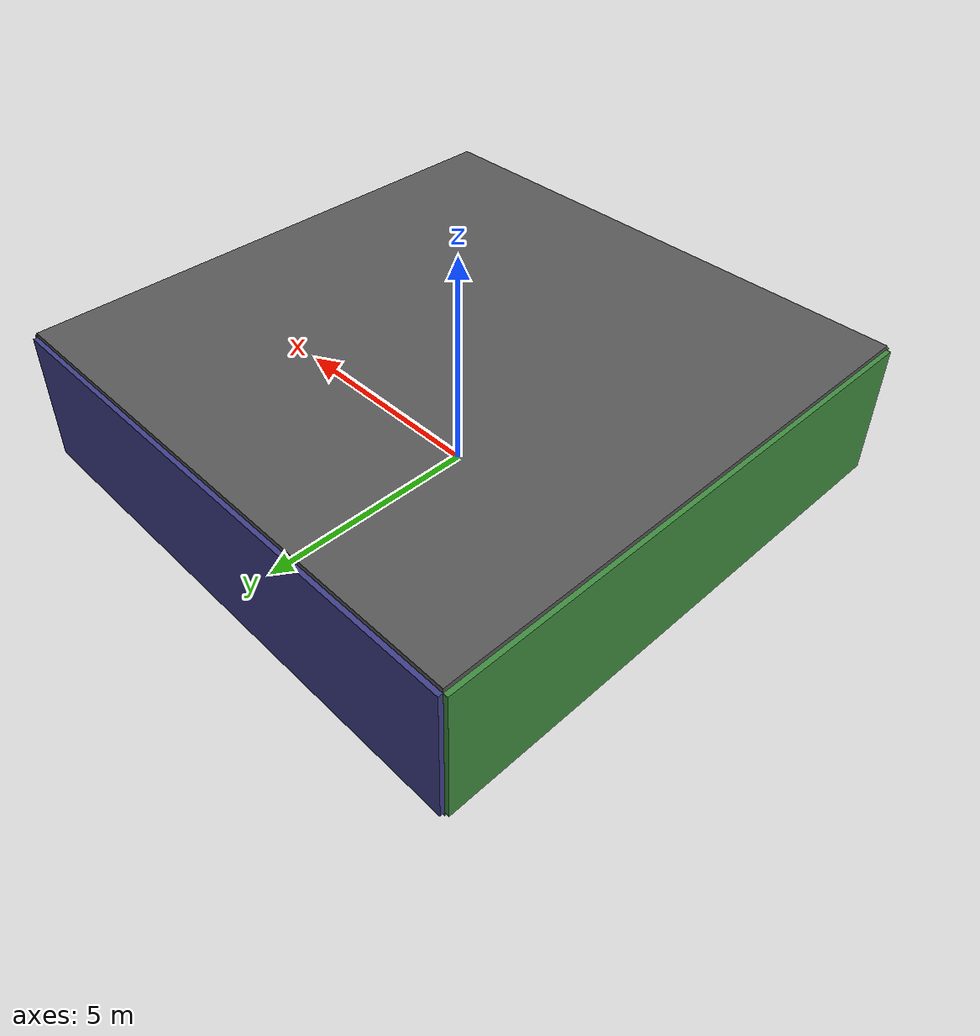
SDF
<?xml version="1.0" ?>
<sdf version="1.10">
  <world name="greenhouse_sensor_static">
    <physics name="greenhouse_1ms" type="ignored">
      <max_step_size>0.001</max_step_size>
      <real_time_factor>1.0</real_time_factor>
    </physics>

    <plugin
      filename="gz-sim-physics-system"
      name="gz::sim::systems::Physics"/>
    <plugin
      filename="gz-sim-user-commands-system"
      name="gz::sim::systems::UserCommands"/>
    <plugin
      filename="gz-sim-scene-broadcaster-system"
      name="gz::sim::systems::SceneBroadcaster"/>
    <plugin
      filename="gz-sim-sensors-system"
      name="gz::sim::systems::Sensors">
      <render_engine>ogre2</render_engine>
    </plugin>
    <plugin
      filename="gz-sim-imu-system"
      name="gz::sim::systems::Imu"/>

    <model name="sensor_room">
      <static>true</static>
      <link name="room">
        <visual name="floor">
          <pose>0 0 -0.05 0 0 0</pose>
          <geometry><box><size>12 12 0.1</size></box></geometry>
          <material>
            <ambient>0.45 0.45 0.45 1</ambient>
            <diffuse>0.45 0.45 0.45 1</diffuse>
          </material>
        </visual>
        <visual name="ceiling">
          <pose>0 0 3.05 0 0 0</pose>
          <geometry><box><size>12 12 0.1</size></box></geometry>
          <material>
            <ambient>0.35 0.35 0.35 1</ambient>
            <diffuse>0.35 0.35 0.35 1</diffuse>
          </material>
        </visual>
        <visual name="wall_positive_x">
          <pose>6.05 0 1.5 0 0 0</pose>
          <geometry><box><size>0.1 12 3.0</size></box></geometry>
          <material>
            <ambient>0.55 0.25 0.25 1</ambient>
            <diffuse>0.55 0.25 0.25 1</diffuse>
          </material>
        </visual>
        <visual name="wall_negative_x">
          <pose>-6.05 0 1.5 0 0 0</pose>
          <geometry><box><size>0.1 12 3.0</size></box></geometry>
          <material>
            <ambient>0.25 0.55 0.25 1</ambient>
            <diffuse>0.25 0.55 0.25 1</diffuse>
          </material>
        </visual>
        <visual name="wall_positive_y">
          <pose>0 6.05 1.5 0 0 0</pose>
          <geometry><box><size>12 0.1 3.0</size></box></geometry>
          <material>
            <ambient>0.25 0.25 0.55 1</ambient>
            <diffuse>0.25 0.25 0.55 1</diffuse>
          </material>
        </visual>
        <visual name="wall_negative_y">
          <pose>0 -6.05 1.5 0 0 0</pose>
          <geometry><box><size>12 0.1 3.0</size></box></geometry>
          <material>
            <ambient>0.55 0.55 0.25 1</ambient>
            <diffuse>0.55 0.55 0.25 1</diffuse>
          </material>
        </visual>
      </link>
    </model>

    <model name="terrain_obstacles">
      <static>true</static>
      <link name="obstacles">
        <collision name="front_obstacle_collision">
          <pose>3.0 0 0.5 0 0 0</pose>
          <geometry><box><size>0.8 1.2 1.0</size></box></geometry>
        </collision>
        <visual name="front_obstacle">
          <pose>3.0 0 0.5 0 0 0</pose>
          <geometry><box><size>0.8 1.2 1.0</size></box></geometry>
          <material>
            <ambient>0.8 0.3 0.1 1</ambient>
            <diffuse>0.8 0.3 0.1 1</diffuse>
          </material>
        </visual>

        <collision name="left_obstacle_collision">
          <pose>-2.5 2.0 0.6 0 0 0</pose>
          <geometry><box><size>0.7 0.7 1.2</size></box></geometry>
        </collision>
        <visual name="left_obstacle">
          <pose>-2.5 2.0 0.6 0 0 0</pose>
          <geometry><box><size>0.7 0.7 1.2</size></box></geometry>
          <material>
            <ambient>0.1 0.65 0.8 1</ambient>
            <diffuse>0.1 0.65 0.8 1</diffuse>
          </material>
        </visual>

        <collision name="right_obstacle_collision">
          <pose>-2.0 -2.5 0.45 0 0 0</pose>
          <geometry><box><size>1.0 0.6 0.9</size></box></geometry>
        </collision>
        <visual name="right_obstacle">
          <pose>-2.0 -2.5 0.45 0 0 0</pose>
          <geometry><box><size>1.0 0.6 0.9</size></box></geometry>
          <material>
            <ambient>0.55 0.2 0.75 1</ambient>
            <diffuse>0.55 0.2 0.75 1</diffuse>
          </material>
        </visual>
      </link>
    </model>

    <model name="sensor_rig">
      <static>true</static>
      <pose>0 0 1.0 0 0 0</pose>
      <link name="livox_frame">
        <sensor name="generic_3d_lidar" type="gpu_lidar">
          <topic>/greenhouse/generic_lidar</topic>
          <gz_frame_id>livox_frame</gz_frame_id>
          <update_rate>10</update_rate>
          <always_on>true</always_on>
          <visualize>false</visualize>
          <lidar>
            <scan>
              <horizontal>
                <samples>256</samples>
                <resolution>1</resolution>
                <min_angle>-3.141592653589793</min_angle>
                <max_angle>3.141592653589793</max_angle>
              </horizontal>
              <vertical>
                <samples>16</samples>
                <resolution>1</resolution>
                <min_angle>-0.349065850398866</min_angle>
                <max_angle>0.349065850398866</max_angle>
              </vertical>
            </scan>
            <range>
              <min>0.10</min>
              <max>10.0</max>
              <resolution>0.01</resolution>
            </range>
          </lidar>
        </sensor>

        <sensor name="generic_imu" type="imu">
          <topic>/greenhouse/generic_imu</topic>
          <gz_frame_id>livox_frame</gz_frame_id>
          <update_rate>100</update_rate>
          <always_on>true</always_on>
          <visualize>false</visualize>
        </sensor>
      </link>
    </model>
  </world>
</sdf>
